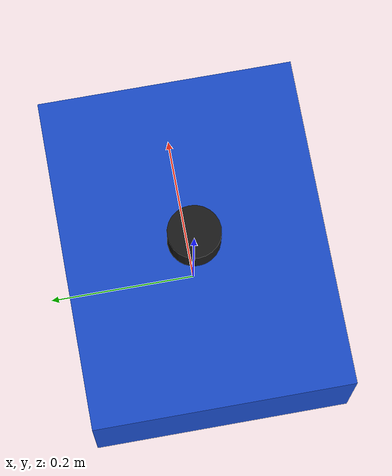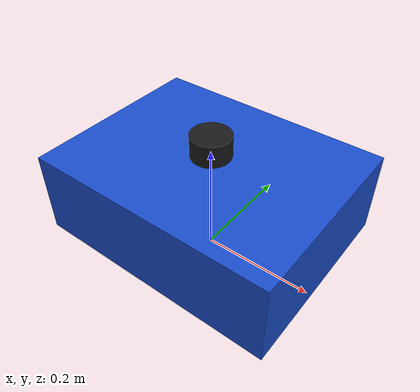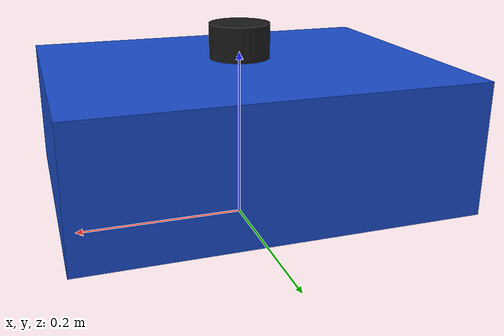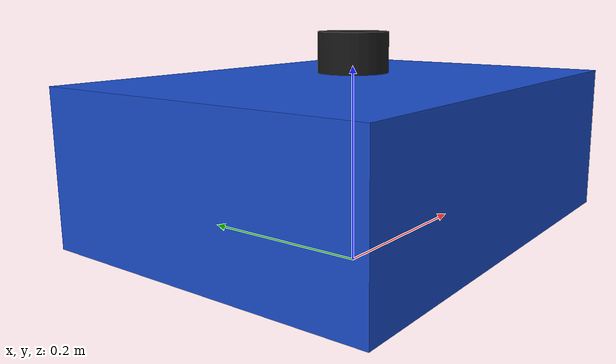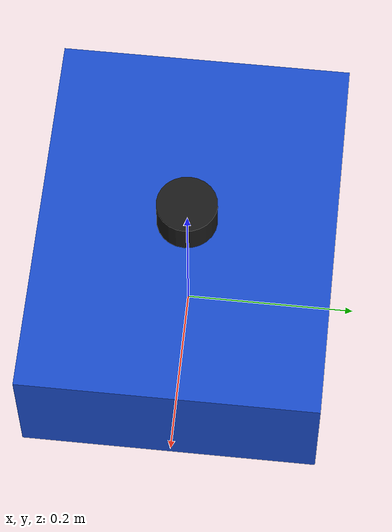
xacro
<?xml version="1.0"?>
<robot xmlns:xacro="http://www.ros.org/wiki/xacro" name="medbot">

  <!-- Base Footprint (Ground Projection) -->
  <link name="base_footprint"/>

  <!-- Base Link (Chassis Center: Length 44cm x Width 34cm) -->
  <link name="base_link">
    <visual>
      <geometry>
        <box size="0.44 0.34 0.15"/>
      </geometry>
      <material name="blue">
        <color rgba="0.1 0.3 0.8 1.0"/>
      </material>
    </visual>
    <collision>
      <geometry>
        <box size="0.44 0.34 0.15"/>
      </geometry>
    </collision>
  </link>

  <joint name="base_footprint_joint" type="fixed">
    <parent link="base_footprint"/>
    <child link="base_link"/>
    <origin xyz="0 0 0.1143" rpy="0 0 0"/>
  </joint>

  <!-- YDLIDAR Link -->
  <link name="laser_frame">
    <visual>
      <geometry>
        <cylinder radius="0.035" length="0.04"/>
      </geometry>
      <material name="black">
        <color rgba="0.1 0.1 0.1 1.0"/>
      </material>
    </visual>
    <collision>
      <geometry>
        <cylinder radius="0.035" length="0.04"/>
      </geometry>
    </collision>
  </link>

  <joint name="laser_joint" type="fixed">
    <parent link="base_link"/>
    <child link="laser_frame"/>
    <!-- Position LiDAR in the center of the robot chassis with 360-degree forward alignment -->
    <origin xyz="0.0 0.0 0.10" rpy="0 0 0"/>
  </joint>

</robot>
